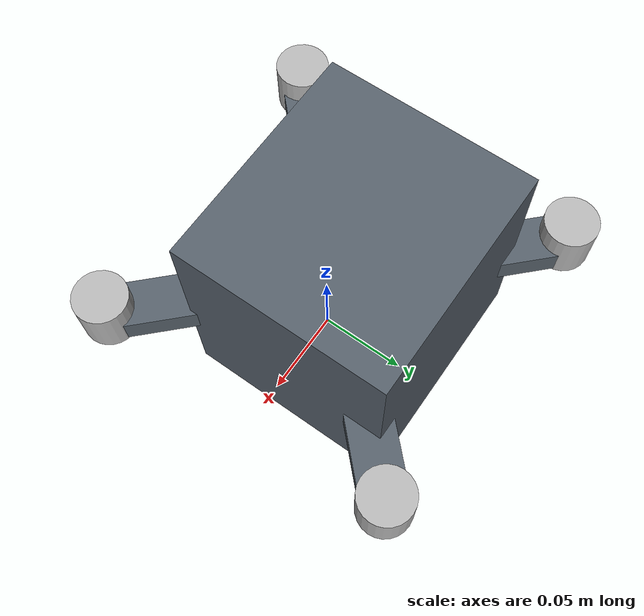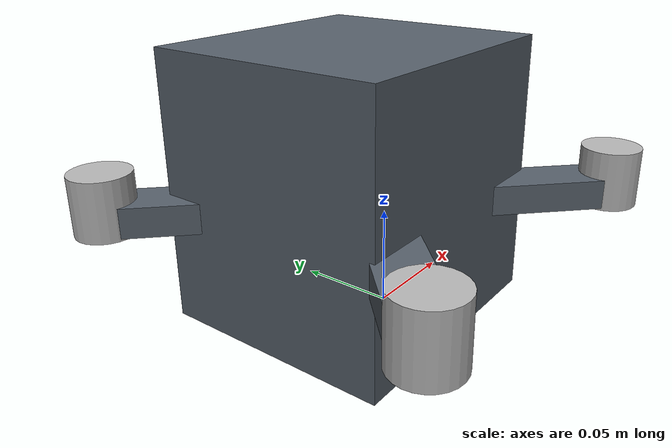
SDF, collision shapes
<?xml version="1.0"?>
<sdf version="1.9">
  <model name="team_racer">
    <!-- Raise base_link so the CAD lower bound touches z=0 at the default pose. -->
    <pose>0 0 0.06756394 0 0 0</pose>
    <self_collide>false</self_collide>

    <!-- The CAD mesh already contains the D435 body. Merge only its virtual
         sensors and 72 g inertial model at the CAD component frame. -->
    <include merge="true">
      <uri>model://realsense_d435_sensor</uri>
      <pose>-0.0085553439 -0.0652616422 0.0549360600 0 0 0</pose>
    </include>

    <link name="base_link">
      <!-- Temporary PX4 gz_x500 dynamics baseline; not measured flight truth. -->
      <inertial>
        <pose>0 0 0 0 0 0</pose>
        <mass>2.0</mass>
        <inertia>
          <ixx>0.0216666667</ixx>
          <iyy>0.0216666667</iyy>
          <izz>0.0400000000</izz>
          <ixy>0</ixy>
          <ixz>0</ixz>
          <iyz>0</iyz>
        </inertia>
      </inertial>

      <visual name="team_cad_visual">
        <!-- SolidWorks Y-up -> ROS/Gazebo FLU. -->
        <pose>0 0 0 1.57079632679 0 1.57079632679</pose>
        <geometry>
          <mesh>
            <uri>model://team_racer/meshes/base_link.stl</uri>
          </mesh>
        </geometry>
        <material>
          <diffuse>0.34 0.38 0.42 1</diffuse>
          <specular>0.12 0.12 0.12 1</specular>
        </material>
      </visual>

      <!-- Primitive-only collision geometry keeps contact simulation cheap. -->
      <collision name="central_stack_collision">
        <pose>-0.0070725679 0.0137969405 -0.0000639409 0 0 0</pose>
        <geometry>
          <box><size>0.13 0.12 0.1350000054</size></box>
        </geometry>
      </collision>
      <collision name="front_right_to_rear_left_arm_collision">
        <pose>-0.0062722581 0.0047383578 -0.01 0 0 -0.7853981634</pose>
        <geometry>
          <box><size>0.25 0.025 0.015</size></box>
        </geometry>
      </collision>
      <collision name="front_left_to_rear_right_arm_collision">
        <pose>-0.0062722581 0.0047383578 -0.01 0 0 0.7853981634</pose>
        <geometry>
          <box><size>0.25 0.025 0.015</size></box>
        </geometry>
      </collision>

      <!-- Names and parent link match the PX4 gz_bridge x500 sensor contract. -->
      <sensor name="air_pressure_sensor" type="air_pressure">
        <gz_frame_id>base_link</gz_frame_id>
        <always_on>1</always_on>
        <update_rate>50</update_rate>
        <air_pressure>
          <pressure>
            <noise type="gaussian">
              <mean>0</mean>
              <stddev>3</stddev>
            </noise>
          </pressure>
        </air_pressure>
      </sensor>
      <sensor name="magnetometer_sensor" type="magnetometer">
        <gz_frame_id>base_link</gz_frame_id>
        <always_on>1</always_on>
        <update_rate>100</update_rate>
        <magnetometer>
          <x><noise type="gaussian"><stddev>0.0001</stddev></noise></x>
          <y><noise type="gaussian"><stddev>0.0001</stddev></noise></y>
          <z><noise type="gaussian"><stddev>0.0001</stddev></noise></z>
        </magnetometer>
      </sensor>
      <sensor name="imu_sensor" type="imu">
        <pose>0 0 0.02 0 0 0</pose>
        <gz_frame_id>base_link</gz_frame_id>
        <always_on>1</always_on>
        <update_rate>250</update_rate>
        <imu>
          <angular_velocity>
            <x><noise type="gaussian"><mean>0</mean><stddev>0.0008726646</stddev></noise></x>
            <y><noise type="gaussian"><mean>0</mean><stddev>0.0008726646</stddev></noise></y>
            <z><noise type="gaussian"><mean>0</mean><stddev>0.0008726646</stddev></noise></z>
          </angular_velocity>
          <linear_acceleration>
            <x><noise type="gaussian"><mean>0</mean><stddev>0.00637</stddev></noise></x>
            <y><noise type="gaussian"><mean>0</mean><stddev>0.00637</stddev></noise></y>
            <z><noise type="gaussian"><mean>0</mean><stddev>0.00686</stddev></noise></z>
          </linear_acceleration>
        </imu>
      </sensor>
      <sensor name="navsat_sensor" type="navsat">
        <gz_frame_id>base_link</gz_frame_id>
        <always_on>1</always_on>
        <update_rate>10</update_rate>
        <navsat/>
      </sensor>
    </link>

    <joint name="camera_joint" type="fixed">
      <parent>base_link</parent>
      <child>camera_link</child>
      <pose relative_to="base_link">-0.0085553439 -0.0652616422 0.0549360600 0 0 0</pose>
    </joint>

    <link name="flight_controller_link">
      <pose relative_to="base_link">0 0 0.02 0 0 0</pose>
      <inertial>
        <mass>0.001</mass>
        <inertia>
          <ixx>0.0000001</ixx><iyy>0.0000001</iyy><izz>0.0000001</izz>
        </inertia>
      </inertial>
    </link>
    <joint name="flight_controller_joint" type="fixed">
      <parent>base_link</parent>
      <child>flight_controller_link</child>
    </joint>

    <link name="imu_link">
      <pose relative_to="base_link">0 0 0.02 0 0 0</pose>
      <inertial>
        <mass>0.001</mass>
        <inertia>
          <ixx>0.0000001</ixx><iyy>0.0000001</iyy><izz>0.0000001</izz>
        </inertia>
      </inertial>
    </link>
    <joint name="imu_joint" type="fixed">
      <parent>base_link</parent>
      <child>imu_link</child>
    </joint>

    <!-- Rotor positions are CAD-derived ROS FLU coordinates. Propeller contact
         is intentionally disabled; only each motor hub has a cylinder collision. -->
    <link name="rotor_0">
      <pose relative_to="base_link">0.0821160896 -0.0836499899 -0.02486394 0 0 0</pose>
      <inertial>
        <mass>0.005</mass>
        <inertia><ixx>9.75e-07</ixx><iyy>0.000273104</iyy><izz>0.000274004</izz></inertia>
      </inertial>
      <collision name="motor_hub_collision">
        <pose>0 0 0.0213 0 0 0</pose>
        <geometry><cylinder><radius>0.015</radius><length>0.03</length></cylinder></geometry>
      </collision>
    </link>
    <joint name="rotor_0_joint" type="revolute">
      <parent>base_link</parent><child>rotor_0</child>
      <axis><xyz>0 0 1</xyz><limit><lower>-1e16</lower><upper>1e16</upper></limit></axis>
    </joint>

    <link name="rotor_1">
      <pose relative_to="base_link">-0.0946606057 0.0931267054 -0.02486394 0 0 0</pose>
      <inertial>
        <mass>0.005</mass>
        <inertia><ixx>9.75e-07</ixx><iyy>0.000273104</iyy><izz>0.000274004</izz></inertia>
      </inertial>
      <collision name="motor_hub_collision">
        <pose>0 0 0.0213 0 0 0</pose>
        <geometry><cylinder><radius>0.015</radius><length>0.03</length></cylinder></geometry>
      </collision>
    </link>
    <joint name="rotor_1_joint" type="revolute">
      <parent>base_link</parent><child>rotor_1</child>
      <axis><xyz>0 0 1</xyz><limit><lower>-1e16</lower><upper>1e16</upper></limit></axis>
    </joint>

    <link name="rotor_2">
      <pose relative_to="base_link">0.0821160896 0.0931267054 -0.02486394 0 0 0</pose>
      <inertial>
        <mass>0.005</mass>
        <inertia><ixx>9.75e-07</ixx><iyy>0.000273104</iyy><izz>0.000274004</izz></inertia>
      </inertial>
      <collision name="motor_hub_collision">
        <pose>0 0 0.0213 0 0 0</pose>
        <geometry><cylinder><radius>0.015</radius><length>0.03</length></cylinder></geometry>
      </collision>
    </link>
    <joint name="rotor_2_joint" type="revolute">
      <parent>base_link</parent><child>rotor_2</child>
      <axis><xyz>0 0 1</xyz><limit><lower>-1e16</lower><upper>1e16</upper></limit></axis>
    </joint>

    <link name="rotor_3">
      <pose relative_to="base_link">-0.0946606057 -0.0836499899 -0.02486394 0 0 0</pose>
      <inertial>
        <mass>0.005</mass>
        <inertia><ixx>9.75e-07</ixx><iyy>0.000273104</iyy><izz>0.000274004</izz></inertia>
      </inertial>
      <collision name="motor_hub_collision">
        <pose>0 0 0.0213 0 0 0</pose>
        <geometry><cylinder><radius>0.015</radius><length>0.03</length></cylinder></geometry>
      </collision>
    </link>
    <joint name="rotor_3_joint" type="revolute">
      <parent>base_link</parent><child>rotor_3</child>
      <axis><xyz>0 0 1</xyz><limit><lower>-1e16</lower><upper>1e16</upper></limit></axis>
    </joint>

    <!-- Motor coefficients remain the PX4 gz_x500 baseline until bench tests. -->
    <plugin filename="gz-sim-multicopter-motor-model-system" name="gz::sim::systems::MulticopterMotorModel">
      <jointName>rotor_0_joint</jointName><linkName>rotor_0</linkName>
      <turningDirection>ccw</turningDirection><timeConstantUp>0.0125</timeConstantUp>
      <timeConstantDown>0.025</timeConstantDown><maxRotVelocity>1000</maxRotVelocity>
      <motorConstant>8.54858e-06</motorConstant><momentConstant>0.016</momentConstant>
      <commandSubTopic>command/motor_speed</commandSubTopic><motorNumber>0</motorNumber>
      <rotorDragCoefficient>8.06428e-05</rotorDragCoefficient>
      <rollingMomentCoefficient>1e-06</rollingMomentCoefficient>
      <motorSpeedPubTopic>motor_speed/0</motorSpeedPubTopic><rotorVelocitySlowdownSim>10</rotorVelocitySlowdownSim>
    </plugin>
    <plugin filename="gz-sim-multicopter-motor-model-system" name="gz::sim::systems::MulticopterMotorModel">
      <jointName>rotor_1_joint</jointName><linkName>rotor_1</linkName>
      <turningDirection>ccw</turningDirection><timeConstantUp>0.0125</timeConstantUp>
      <timeConstantDown>0.025</timeConstantDown><maxRotVelocity>1000</maxRotVelocity>
      <motorConstant>8.54858e-06</motorConstant><momentConstant>0.016</momentConstant>
      <commandSubTopic>command/motor_speed</commandSubTopic><motorNumber>1</motorNumber>
      <rotorDragCoefficient>8.06428e-05</rotorDragCoefficient>
      <rollingMomentCoefficient>1e-06</rollingMomentCoefficient>
      <motorSpeedPubTopic>motor_speed/1</motorSpeedPubTopic><rotorVelocitySlowdownSim>10</rotorVelocitySlowdownSim>
    </plugin>
    <plugin filename="gz-sim-multicopter-motor-model-system" name="gz::sim::systems::MulticopterMotorModel">
      <jointName>rotor_2_joint</jointName><linkName>rotor_2</linkName>
      <turningDirection>cw</turningDirection><timeConstantUp>0.0125</timeConstantUp>
      <timeConstantDown>0.025</timeConstantDown><maxRotVelocity>1000</maxRotVelocity>
      <motorConstant>8.54858e-06</motorConstant><momentConstant>0.016</momentConstant>
      <commandSubTopic>command/motor_speed</commandSubTopic><motorNumber>2</motorNumber>
      <rotorDragCoefficient>8.06428e-05</rotorDragCoefficient>
      <rollingMomentCoefficient>1e-06</rollingMomentCoefficient>
      <motorSpeedPubTopic>motor_speed/2</motorSpeedPubTopic><rotorVelocitySlowdownSim>10</rotorVelocitySlowdownSim>
    </plugin>
    <plugin filename="gz-sim-multicopter-motor-model-system" name="gz::sim::systems::MulticopterMotorModel">
      <jointName>rotor_3_joint</jointName><linkName>rotor_3</linkName>
      <turningDirection>cw</turningDirection><timeConstantUp>0.0125</timeConstantUp>
      <timeConstantDown>0.025</timeConstantDown><maxRotVelocity>1000</maxRotVelocity>
      <motorConstant>8.54858e-06</motorConstant><momentConstant>0.016</momentConstant>
      <commandSubTopic>command/motor_speed</commandSubTopic><motorNumber>3</motorNumber>
      <rotorDragCoefficient>8.06428e-05</rotorDragCoefficient>
      <rollingMomentCoefficient>1e-06</rollingMomentCoefficient>
      <motorSpeedPubTopic>motor_speed/3</motorSpeedPubTopic><rotorVelocitySlowdownSim>10</rotorVelocitySlowdownSim>
    </plugin>
  </model>
</sdf>

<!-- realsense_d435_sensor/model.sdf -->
<sdf version="1.9">
  <model name="realsense_d435_sensor">
    <self_collide>false</self_collide>
    <static>false</static>
    <link name="camera_link">
      <inertial>
        <mass>0.072</mass>
        <inertia>
          <!-- 72 g box approximation for 25.05 x 90 x 25 mm. -->
          <ixx>0.000052350000</ixx>
          <iyy>0.000007515015</iyy>
          <izz>0.000052365015</izz>
          <ixy>0</ixy>
          <ixz>0</ixz>
          <iyz>0</iyz>
        </inertia>
      </inertial>

      <sensor name="color_rgb" type="camera">
        <gz_frame_id>camera_link</gz_frame_id>
        <topic>/camera/color/image_raw</topic>
        <camera_info_topic>/camera/color/camera_info</camera_info_topic>
        <pose>0 0.015 0 0 0 0</pose>
        <always_on>true</always_on>
        <update_rate>15</update_rate>
        <visualize>false</visualize>
        <camera>
          <horizontal_fov>1.211</horizontal_fov>
          <image><width>640</width><height>360</height><format>R8G8B8</format></image>
          <clip><near>0.15</near><far>65.0</far></clip>
        </camera>
      </sensor>

      <sensor name="depth_stereo" type="depth_camera">
        <gz_frame_id>camera_link</gz_frame_id>
        <topic>/camera/depth/image_raw</topic>
        <camera_info_topic>/camera/depth/camera_info</camera_info_topic>
        <always_on>false</always_on>
        <update_rate>15</update_rate>
        <visualize>false</visualize>
        <camera>
          <horizontal_fov>1.518</horizontal_fov>
          <image><width>424</width><height>240</height><format>R_FLOAT32</format></image>
          <clip><near>0.28</near><far>10.0</far></clip>
        </camera>
      </sensor>

      <sensor name="infra_left" type="camera">
        <gz_frame_id>camera_link</gz_frame_id>
        <topic>/camera/infra1/image_raw</topic>
        <always_on>false</always_on>
        <update_rate>10</update_rate>
        <visualize>false</visualize>
        <camera>
          <horizontal_fov>1.518</horizontal_fov>
          <image><width>424</width><height>240</height><format>L8</format></image>
          <clip><near>0.28</near><far>10.0</far></clip>
        </camera>
      </sensor>

      <sensor name="infra_right" type="camera">
        <gz_frame_id>camera_link</gz_frame_id>
        <topic>/camera/infra2/image_raw</topic>
        <pose>0 -0.050 0 0 0 0</pose>
        <always_on>false</always_on>
        <update_rate>10</update_rate>
        <visualize>false</visualize>
        <camera>
          <horizontal_fov>1.518</horizontal_fov>
          <image><width>424</width><height>240</height><format>L8</format></image>
          <clip><near>0.28</near><far>10.0</far></clip>
        </camera>
      </sensor>
    </link>
  </model>
</sdf>
